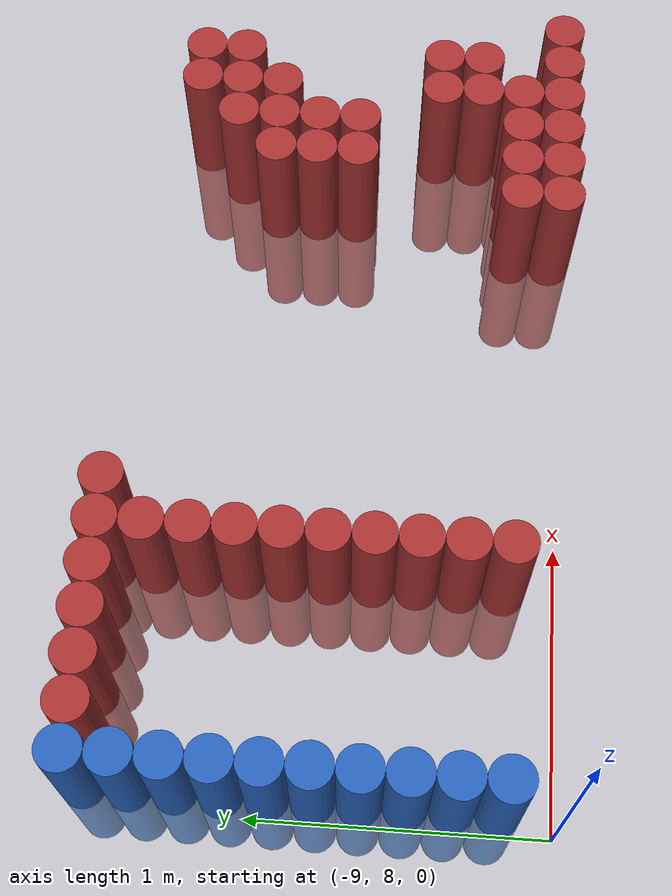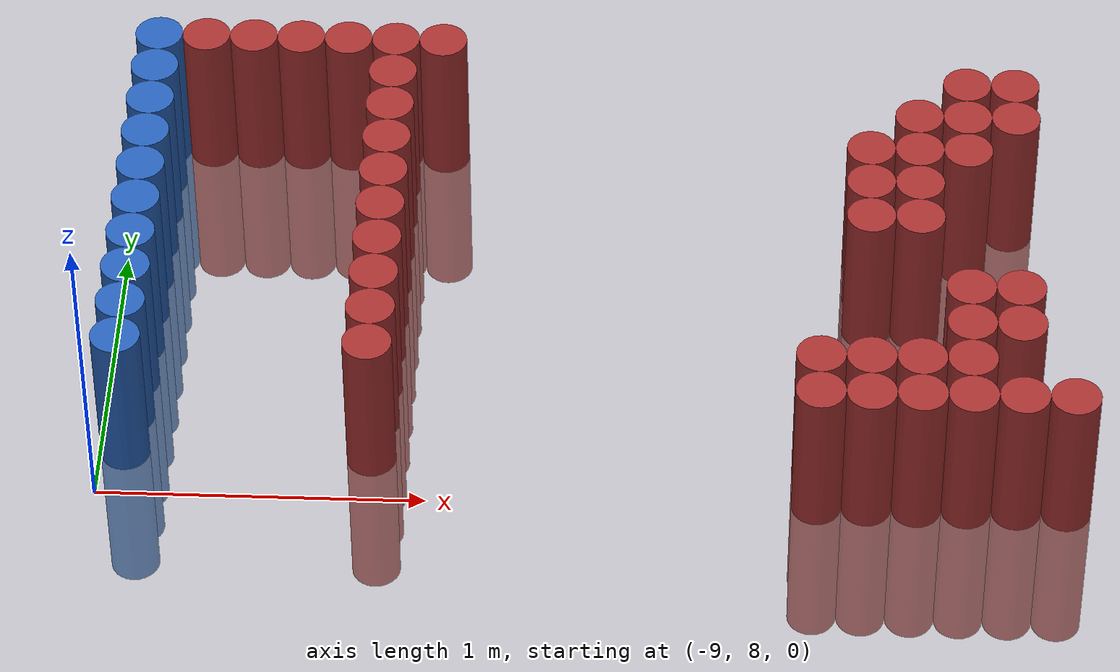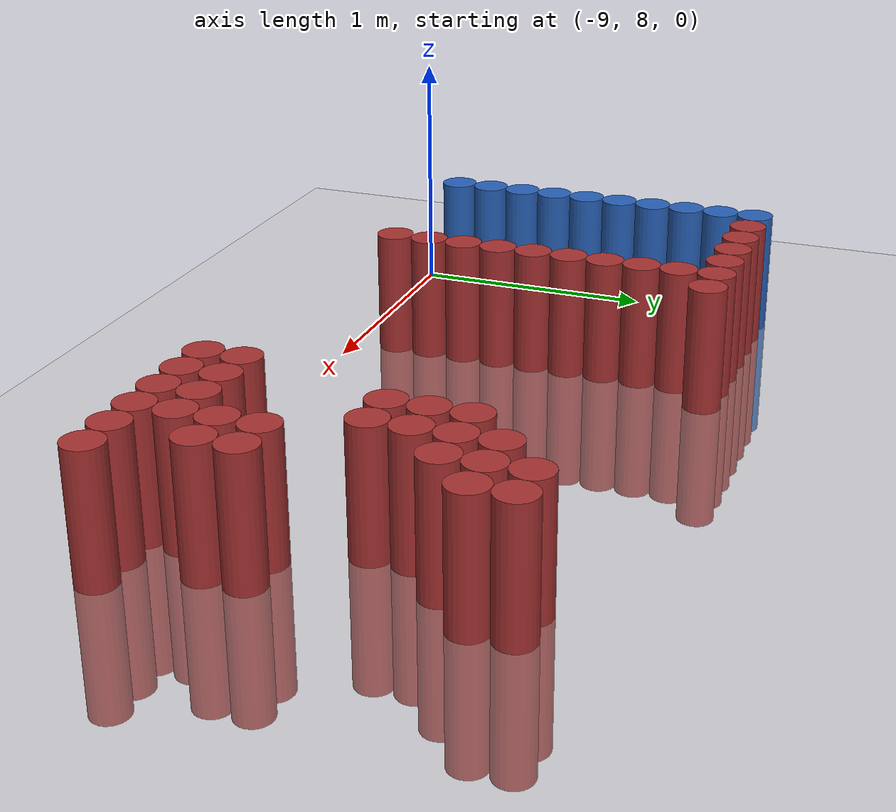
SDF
<sdf version="1.6">
 <world name="default">
  <model name="ground_plane">
   <static>1</static>
   <link name="link">
    <collision name="collision">
     <geometry><plane><normal>0 0 1</normal><size>100 100</size></plane></geometry>
     <surface><friction><ode><mu>100</mu><mu2>50</mu2></ode></friction></surface>
    </collision>
    <visual name="visual">
     <cast_shadows>0</cast_shadows>
     <geometry><plane><normal>0 0 1</normal><size>100 100</size></plane></geometry>
     <material>
      <script><uri>file://media/materials/scripts/gazebo.material</uri><name>Gazebo/Grey</name></script>
     </material>
    </visual>
   </link>
  </model>
  <model name="unit_cylinder_145">
   <static>1</static>
   <pose>-8.925000 8.175000 0.000000 0.000000 0.000000 0.000000</pose>
   <link name="link">
    <inertial>
     <mass>1</mass>
     <inertia><ixx>0.145833</ixx><ixy>0</ixy><ixz>0</ixz><iyy>0.145833</iyy><iyz>0</iyz><izz>0.125</izz></inertia>
    </inertial>
    <collision name="collision">
     <geometry><cylinder><radius>0.075000</radius><length>1</length></cylinder></geometry>
    </collision>
    <visual name="visual">
     <geometry><cylinder><radius>0.075000</radius><length>1</length></cylinder></geometry>
     <material>
      <ambient>0.152000 0.379000 0.720000 1</ambient>
      <diffuse>0.152000 0.379000 0.720000 1</diffuse>
     </material>
     <material>
      <script><name>Gazebo/Grey</name><uri>file://media/materials/scripts/gazebo.material</uri></script>
     </material>
    </visual>
   </link>
  </model>
  <model name="unit_cylinder_146">
   <static>1</static>
   <pose>-8.925000 8.325000 0.000000 0.000000 0.000000 0.000000</pose>
   <link name="link">
    <inertial>
     <mass>1</mass>
     <inertia><ixx>0.145833</ixx><ixy>0</ixy><ixz>0</ixz><iyy>0.145833</iyy><iyz>0</iyz><izz>0.125</izz></inertia>
    </inertial>
    <collision name="collision">
     <geometry><cylinder><radius>0.075000</radius><length>1</length></cylinder></geometry>
    </collision>
    <visual name="visual">
     <geometry><cylinder><radius>0.075000</radius><length>1</length></cylinder></geometry>
     <material>
      <ambient>0.152000 0.379000 0.720000 1</ambient>
      <diffuse>0.152000 0.379000 0.720000 1</diffuse>
     </material>
     <material>
      <script><name>Gazebo/Grey</name><uri>file://media/materials/scripts/gazebo.material</uri></script>
     </material>
    </visual>
   </link>
  </model>
  <model name="unit_cylinder_147">
   <static>1</static>
   <pose>-8.925000 8.475000 0.000000 0.000000 0.000000 0.000000</pose>
   <link name="link">
    <inertial>
     <mass>1</mass>
     <inertia><ixx>0.145833</ixx><ixy>0</ixy><ixz>0</ixz><iyy>0.145833</iyy><iyz>0</iyz><izz>0.125</izz></inertia>
    </inertial>
    <collision name="collision">
     <geometry><cylinder><radius>0.075000</radius><length>1</length></cylinder></geometry>
    </collision>
    <visual name="visual">
     <geometry><cylinder><radius>0.075000</radius><length>1</length></cylinder></geometry>
     <material>
      <ambient>0.152000 0.379000 0.720000 1</ambient>
      <diffuse>0.152000 0.379000 0.720000 1</diffuse>
     </material>
     <material>
      <script><name>Gazebo/Grey</name><uri>file://media/materials/scripts/gazebo.material</uri></script>
     </material>
    </visual>
   </link>
  </model>
  <model name="unit_cylinder_148">
   <static>1</static>
   <pose>-8.925000 8.625000 0.000000 0.000000 0.000000 0.000000</pose>
   <link name="link">
    <inertial>
     <mass>1</mass>
     <inertia><ixx>0.145833</ixx><ixy>0</ixy><ixz>0</ixz><iyy>0.145833</iyy><iyz>0</iyz><izz>0.125</izz></inertia>
    </inertial>
    <collision name="collision">
     <geometry><cylinder><radius>0.075000</radius><length>1</length></cylinder></geometry>
    </collision>
    <visual name="visual">
     <geometry><cylinder><radius>0.075000</radius><length>1</length></cylinder></geometry>
     <material>
      <ambient>0.152000 0.379000 0.720000 1</ambient>
      <diffuse>0.152000 0.379000 0.720000 1</diffuse>
     </material>
     <material>
      <script><name>Gazebo/Grey</name><uri>file://media/materials/scripts/gazebo.material</uri></script>
     </material>
    </visual>
   </link>
  </model>
  <model name="unit_cylinder_149">
   <static>1</static>
   <pose>-8.925000 8.775000 0.000000 0.000000 0.000000 0.000000</pose>
   <link name="link">
    <inertial>
     <mass>1</mass>
     <inertia><ixx>0.145833</ixx><ixy>0</ixy><ixz>0</ixz><iyy>0.145833</iyy><iyz>0</iyz><izz>0.125</izz></inertia>
    </inertial>
    <collision name="collision">
     <geometry><cylinder><radius>0.075000</radius><length>1</length></cylinder></geometry>
    </collision>
    <visual name="visual">
     <geometry><cylinder><radius>0.075000</radius><length>1</length></cylinder></geometry>
     <material>
      <ambient>0.152000 0.379000 0.720000 1</ambient>
      <diffuse>0.152000 0.379000 0.720000 1</diffuse>
     </material>
     <material>
      <script><name>Gazebo/Grey</name><uri>file://media/materials/scripts/gazebo.material</uri></script>
     </material>
    </visual>
   </link>
  </model>
  <model name="unit_cylinder_150">
   <static>1</static>
   <pose>-8.925000 8.925000 0.000000 0.000000 0.000000 0.000000</pose>
   <link name="link">
    <inertial>
     <mass>1</mass>
     <inertia><ixx>0.145833</ixx><ixy>0</ixy><ixz>0</ixz><iyy>0.145833</iyy><iyz>0</iyz><izz>0.125</izz></inertia>
    </inertial>
    <collision name="collision">
     <geometry><cylinder><radius>0.075000</radius><length>1</length></cylinder></geometry>
    </collision>
    <visual name="visual">
     <geometry><cylinder><radius>0.075000</radius><length>1</length></cylinder></geometry>
     <material>
      <ambient>0.152000 0.379000 0.720000 1</ambient>
      <diffuse>0.152000 0.379000 0.720000 1</diffuse>
     </material>
     <material>
      <script><name>Gazebo/Grey</name><uri>file://media/materials/scripts/gazebo.material</uri></script>
     </material>
    </visual>
   </link>
  </model>
  <model name="unit_cylinder_151">
   <static>1</static>
   <pose>-8.925000 9.075000 0.000000 0.000000 0.000000 0.000000</pose>
   <link name="link">
    <inertial>
     <mass>1</mass>
     <inertia><ixx>0.145833</ixx><ixy>0</ixy><ixz>0</ixz><iyy>0.145833</iyy><iyz>0</iyz><izz>0.125</izz></inertia>
    </inertial>
    <collision name="collision">
     <geometry><cylinder><radius>0.075000</radius><length>1</length></cylinder></geometry>
    </collision>
    <visual name="visual">
     <geometry><cylinder><radius>0.075000</radius><length>1</length></cylinder></geometry>
     <material>
      <ambient>0.152000 0.379000 0.720000 1</ambient>
      <diffuse>0.152000 0.379000 0.720000 1</diffuse>
     </material>
     <material>
      <script><name>Gazebo/Grey</name><uri>file://media/materials/scripts/gazebo.material</uri></script>
     </material>
    </visual>
   </link>
  </model>
  <model name="unit_cylinder_152">
   <static>1</static>
   <pose>-8.925000 9.225000 0.000000 0.000000 0.000000 0.000000</pose>
   <link name="link">
    <inertial>
     <mass>1</mass>
     <inertia><ixx>0.145833</ixx><ixy>0</ixy><ixz>0</ixz><iyy>0.145833</iyy><iyz>0</iyz><izz>0.125</izz></inertia>
    </inertial>
    <collision name="collision">
     <geometry><cylinder><radius>0.075000</radius><length>1</length></cylinder></geometry>
    </collision>
    <visual name="visual">
     <geometry><cylinder><radius>0.075000</radius><length>1</length></cylinder></geometry>
     <material>
      <ambient>0.152000 0.379000 0.720000 1</ambient>
      <diffuse>0.152000 0.379000 0.720000 1</diffuse>
     </material>
     <material>
      <script><name>Gazebo/Grey</name><uri>file://media/materials/scripts/gazebo.material</uri></script>
     </material>
    </visual>
   </link>
  </model>
  <model name="unit_cylinder_153">
   <static>1</static>
   <pose>-8.925000 9.375000 0.000000 0.000000 0.000000 0.000000</pose>
   <link name="link">
    <inertial>
     <mass>1</mass>
     <inertia><ixx>0.145833</ixx><ixy>0</ixy><ixz>0</ixz><iyy>0.145833</iyy><iyz>0</iyz><izz>0.125</izz></inertia>
    </inertial>
    <collision name="collision">
     <geometry><cylinder><radius>0.075000</radius><length>1</length></cylinder></geometry>
    </collision>
    <visual name="visual">
     <geometry><cylinder><radius>0.075000</radius><length>1</length></cylinder></geometry>
     <material>
      <ambient>0.152000 0.379000 0.720000 1</ambient>
      <diffuse>0.152000 0.379000 0.720000 1</diffuse>
     </material>
     <material>
      <script><name>Gazebo/Grey</name><uri>file://media/materials/scripts/gazebo.material</uri></script>
     </material>
    </visual>
   </link>
  </model>
  <model name="unit_cylinder_154">
   <static>1</static>
   <pose>-8.925000 9.525000 0.000000 0.000000 0.000000 0.000000</pose>
   <link name="link">
    <inertial>
     <mass>1</mass>
     <inertia><ixx>0.145833</ixx><ixy>0</ixy><ixz>0</ixz><iyy>0.145833</iyy><iyz>0</iyz><izz>0.125</izz></inertia>
    </inertial>
    <collision name="collision">
     <geometry><cylinder><radius>0.075000</radius><length>1</length></cylinder></geometry>
    </collision>
    <visual name="visual">
     <geometry><cylinder><radius>0.075000</radius><length>1</length></cylinder></geometry>
     <material>
      <ambient>0.152000 0.379000 0.720000 1</ambient>
      <diffuse>0.152000 0.379000 0.720000 1</diffuse>
     </material>
     <material>
      <script><name>Gazebo/Grey</name><uri>file://media/materials/scripts/gazebo.material</uri></script>
     </material>
    </visual>
   </link>
  </model>
  <model name="unit_cylinder_156">
   <static>1</static>
   <pose>-8.775000 9.525000 0.000000 0.000000 0.000000 0.000000</pose>
   <link name="link">
    <inertial>
     <mass>1</mass>
     <inertia><ixx>0.145833</ixx><ixy>0</ixy><ixz>0</ixz><iyy>0.145833</iyy><iyz>0</iyz><izz>0.125</izz></inertia>
    </inertial>
    <collision name="collision">
     <geometry><cylinder><radius>0.075000</radius><length>1</length></cylinder></geometry>
    </collision>
    <visual name="visual">
     <geometry><cylinder><radius>0.075000</radius><length>1</length></cylinder></geometry>
     <material>
      <ambient>0.648000 0.192000 0.192000 1</ambient>
      <diffuse>0.648000 0.192000 0.192000 1</diffuse>
     </material>
     <material>
      <script><name>Gazebo/Grey</name><uri>file://media/materials/scripts/gazebo.material</uri></script>
     </material>
    </visual>
   </link>
  </model>
  <model name="unit_cylinder_158">
   <static>1</static>
   <pose>-8.625000 9.525000 0.000000 0.000000 0.000000 0.000000</pose>
   <link name="link">
    <inertial>
     <mass>1</mass>
     <inertia><ixx>0.145833</ixx><ixy>0</ixy><ixz>0</ixz><iyy>0.145833</iyy><iyz>0</iyz><izz>0.125</izz></inertia>
    </inertial>
    <collision name="collision">
     <geometry><cylinder><radius>0.075000</radius><length>1</length></cylinder></geometry>
    </collision>
    <visual name="visual">
     <geometry><cylinder><radius>0.075000</radius><length>1</length></cylinder></geometry>
     <material>
      <ambient>0.648000 0.192000 0.192000 1</ambient>
      <diffuse>0.648000 0.192000 0.192000 1</diffuse>
     </material>
     <material>
      <script><name>Gazebo/Grey</name><uri>file://media/materials/scripts/gazebo.material</uri></script>
     </material>
    </visual>
   </link>
  </model>
  <model name="unit_cylinder_160">
   <static>1</static>
   <pose>-8.475000 9.525000 0.000000 0.000000 0.000000 0.000000</pose>
   <link name="link">
    <inertial>
     <mass>1</mass>
     <inertia><ixx>0.145833</ixx><ixy>0</ixy><ixz>0</ixz><iyy>0.145833</iyy><iyz>0</iyz><izz>0.125</izz></inertia>
    </inertial>
    <collision name="collision">
     <geometry><cylinder><radius>0.075000</radius><length>1</length></cylinder></geometry>
    </collision>
    <visual name="visual">
     <geometry><cylinder><radius>0.075000</radius><length>1</length></cylinder></geometry>
     <material>
      <ambient>0.648000 0.192000 0.192000 1</ambient>
      <diffuse>0.648000 0.192000 0.192000 1</diffuse>
     </material>
     <material>
      <script><name>Gazebo/Grey</name><uri>file://media/materials/scripts/gazebo.material</uri></script>
     </material>
    </visual>
   </link>
  </model>
  <model name="unit_cylinder_162">
   <static>1</static>
   <pose>-8.325000 9.525000 0.000000 0.000000 0.000000 0.000000</pose>
   <link name="link">
    <inertial>
     <mass>1</mass>
     <inertia><ixx>0.145833</ixx><ixy>0</ixy><ixz>0</ixz><iyy>0.145833</iyy><iyz>0</iyz><izz>0.125</izz></inertia>
    </inertial>
    <collision name="collision">
     <geometry><cylinder><radius>0.075000</radius><length>1</length></cylinder></geometry>
    </collision>
    <visual name="visual">
     <geometry><cylinder><radius>0.075000</radius><length>1</length></cylinder></geometry>
     <material>
      <ambient>0.648000 0.192000 0.192000 1</ambient>
      <diffuse>0.648000 0.192000 0.192000 1</diffuse>
     </material>
     <material>
      <script><name>Gazebo/Grey</name><uri>file://media/materials/scripts/gazebo.material</uri></script>
     </material>
    </visual>
   </link>
  </model>
  <model name="unit_cylinder_183">
   <static>1</static>
   <pose>-8.175000 8.175000 0.000000 0.000000 0.000000 0.000000</pose>
   <link name="link">
    <inertial>
     <mass>1</mass>
     <inertia><ixx>0.145833</ixx><ixy>0</ixy><ixz>0</ixz><iyy>0.145833</iyy><iyz>0</iyz><izz>0.125</izz></inertia>
    </inertial>
    <collision name="collision">
     <geometry><cylinder><radius>0.075000</radius><length>1</length></cylinder></geometry>
    </collision>
    <visual name="visual">
     <geometry><cylinder><radius>0.075000</radius><length>1</length></cylinder></geometry>
     <material>
      <ambient>0.648000 0.192000 0.192000 1</ambient>
      <diffuse>0.648000 0.192000 0.192000 1</diffuse>
     </material>
     <material>
      <script><name>Gazebo/Grey</name><uri>file://media/materials/scripts/gazebo.material</uri></script>
     </material>
    </visual>
   </link>
  </model>
  <model name="unit_cylinder_184">
   <static>1</static>
   <pose>-8.175000 8.325000 0.000000 0.000000 0.000000 0.000000</pose>
   <link name="link">
    <inertial>
     <mass>1</mass>
     <inertia><ixx>0.145833</ixx><ixy>0</ixy><ixz>0</ixz><iyy>0.145833</iyy><iyz>0</iyz><izz>0.125</izz></inertia>
    </inertial>
    <collision name="collision">
     <geometry><cylinder><radius>0.075000</radius><length>1</length></cylinder></geometry>
    </collision>
    <visual name="visual">
     <geometry><cylinder><radius>0.075000</radius><length>1</length></cylinder></geometry>
     <material>
      <ambient>0.648000 0.192000 0.192000 1</ambient>
      <diffuse>0.648000 0.192000 0.192000 1</diffuse>
     </material>
     <material>
      <script><name>Gazebo/Grey</name><uri>file://media/materials/scripts/gazebo.material</uri></script>
     </material>
    </visual>
   </link>
  </model>
  <model name="unit_cylinder_185">
   <static>1</static>
   <pose>-8.175000 8.475000 0.000000 0.000000 0.000000 0.000000</pose>
   <link name="link">
    <inertial>
     <mass>1</mass>
     <inertia><ixx>0.145833</ixx><ixy>0</ixy><ixz>0</ixz><iyy>0.145833</iyy><iyz>0</iyz><izz>0.125</izz></inertia>
    </inertial>
    <collision name="collision">
     <geometry><cylinder><radius>0.075000</radius><length>1</length></cylinder></geometry>
    </collision>
    <visual name="visual">
     <geometry><cylinder><radius>0.075000</radius><length>1</length></cylinder></geometry>
     <material>
      <ambient>0.648000 0.192000 0.192000 1</ambient>
      <diffuse>0.648000 0.192000 0.192000 1</diffuse>
     </material>
     <material>
      <script><name>Gazebo/Grey</name><uri>file://media/materials/scripts/gazebo.material</uri></script>
     </material>
    </visual>
   </link>
  </model>
  <model name="unit_cylinder_186">
   <static>1</static>
   <pose>-8.175000 8.625000 0.000000 0.000000 0.000000 0.000000</pose>
   <link name="link">
    <inertial>
     <mass>1</mass>
     <inertia><ixx>0.145833</ixx><ixy>0</ixy><ixz>0</ixz><iyy>0.145833</iyy><iyz>0</iyz><izz>0.125</izz></inertia>
    </inertial>
    <collision name="collision">
     <geometry><cylinder><radius>0.075000</radius><length>1</length></cylinder></geometry>
    </collision>
    <visual name="visual">
     <geometry><cylinder><radius>0.075000</radius><length>1</length></cylinder></geometry>
     <material>
      <ambient>0.648000 0.192000 0.192000 1</ambient>
      <diffuse>0.648000 0.192000 0.192000 1</diffuse>
     </material>
     <material>
      <script><name>Gazebo/Grey</name><uri>file://media/materials/scripts/gazebo.material</uri></script>
     </material>
    </visual>
   </link>
  </model>
  <model name="unit_cylinder_187">
   <static>1</static>
   <pose>-8.175000 8.775000 0.000000 0.000000 0.000000 0.000000</pose>
   <link name="link">
    <inertial>
     <mass>1</mass>
     <inertia><ixx>0.145833</ixx><ixy>0</ixy><ixz>0</ixz><iyy>0.145833</iyy><iyz>0</iyz><izz>0.125</izz></inertia>
    </inertial>
    <collision name="collision">
     <geometry><cylinder><radius>0.075000</radius><length>1</length></cylinder></geometry>
    </collision>
    <visual name="visual">
     <geometry><cylinder><radius>0.075000</radius><length>1</length></cylinder></geometry>
     <material>
      <ambient>0.648000 0.192000 0.192000 1</ambient>
      <diffuse>0.648000 0.192000 0.192000 1</diffuse>
     </material>
     <material>
      <script><name>Gazebo/Grey</name><uri>file://media/materials/scripts/gazebo.material</uri></script>
     </material>
    </visual>
   </link>
  </model>
  <model name="unit_cylinder_188">
   <static>1</static>
   <pose>-8.175000 8.925000 0.000000 0.000000 0.000000 0.000000</pose>
   <link name="link">
    <inertial>
     <mass>1</mass>
     <inertia><ixx>0.145833</ixx><ixy>0</ixy><ixz>0</ixz><iyy>0.145833</iyy><iyz>0</iyz><izz>0.125</izz></inertia>
    </inertial>
    <collision name="collision">
     <geometry><cylinder><radius>0.075000</radius><length>1</length></cylinder></geometry>
    </collision>
    <visual name="visual">
     <geometry><cylinder><radius>0.075000</radius><length>1</length></cylinder></geometry>
     <material>
      <ambient>0.648000 0.192000 0.192000 1</ambient>
      <diffuse>0.648000 0.192000 0.192000 1</diffuse>
     </material>
     <material>
      <script><name>Gazebo/Grey</name><uri>file://media/materials/scripts/gazebo.material</uri></script>
     </material>
    </visual>
   </link>
  </model>
  <model name="unit_cylinder_189">
   <static>1</static>
   <pose>-8.175000 9.075000 0.000000 0.000000 0.000000 0.000000</pose>
   <link name="link">
    <inertial>
     <mass>1</mass>
     <inertia><ixx>0.145833</ixx><ixy>0</ixy><ixz>0</ixz><iyy>0.145833</iyy><iyz>0</iyz><izz>0.125</izz></inertia>
    </inertial>
    <collision name="collision">
     <geometry><cylinder><radius>0.075000</radius><length>1</length></cylinder></geometry>
    </collision>
    <visual name="visual">
     <geometry><cylinder><radius>0.075000</radius><length>1</length></cylinder></geometry>
     <material>
      <ambient>0.648000 0.192000 0.192000 1</ambient>
      <diffuse>0.648000 0.192000 0.192000 1</diffuse>
     </material>
     <material>
      <script><name>Gazebo/Grey</name><uri>file://media/materials/scripts/gazebo.material</uri></script>
     </material>
    </visual>
   </link>
  </model>
  <model name="unit_cylinder_190">
   <static>1</static>
   <pose>-8.175000 9.225000 0.000000 0.000000 0.000000 0.000000</pose>
   <link name="link">
    <inertial>
     <mass>1</mass>
     <inertia><ixx>0.145833</ixx><ixy>0</ixy><ixz>0</ixz><iyy>0.145833</iyy><iyz>0</iyz><izz>0.125</izz></inertia>
    </inertial>
    <collision name="collision">
     <geometry><cylinder><radius>0.075000</radius><length>1</length></cylinder></geometry>
    </collision>
    <visual name="visual">
     <geometry><cylinder><radius>0.075000</radius><length>1</length></cylinder></geometry>
     <material>
      <ambient>0.648000 0.192000 0.192000 1</ambient>
      <diffuse>0.648000 0.192000 0.192000 1</diffuse>
     </material>
     <material>
      <script><name>Gazebo/Grey</name><uri>file://media/materials/scripts/gazebo.material</uri></script>
     </material>
    </visual>
   </link>
  </model>
  <model name="unit_cylinder_191">
   <static>1</static>
   <pose>-8.175000 9.375000 0.000000 0.000000 0.000000 0.000000</pose>
   <link name="link">
    <inertial>
     <mass>1</mass>
     <inertia><ixx>0.145833</ixx><ixy>0</ixy><ixz>0</ixz><iyy>0.145833</iyy><iyz>0</iyz><izz>0.125</izz></inertia>
    </inertial>
    <collision name="collision">
     <geometry><cylinder><radius>0.075000</radius><length>1</length></cylinder></geometry>
    </collision>
    <visual name="visual">
     <geometry><cylinder><radius>0.075000</radius><length>1</length></cylinder></geometry>
     <material>
      <ambient>0.648000 0.192000 0.192000 1</ambient>
      <diffuse>0.648000 0.192000 0.192000 1</diffuse>
     </material>
     <material>
      <script><name>Gazebo/Grey</name><uri>file://media/materials/scripts/gazebo.material</uri></script>
     </material>
    </visual>
   </link>
  </model>
  <model name="unit_cylinder_192">
   <static>1</static>
   <pose>-8.175000 9.525000 0.000000 0.000000 0.000000 0.000000</pose>
   <link name="link">
    <inertial>
     <mass>1</mass>
     <inertia><ixx>0.145833</ixx><ixy>0</ixy><ixz>0</ixz><iyy>0.145833</iyy><iyz>0</iyz><izz>0.125</izz></inertia>
    </inertial>
    <collision name="collision">
     <geometry><cylinder><radius>0.075000</radius><length>1</length></cylinder></geometry>
    </collision>
    <visual name="visual">
     <geometry><cylinder><radius>0.075000</radius><length>1</length></cylinder></geometry>
     <material>
      <ambient>0.648000 0.192000 0.192000 1</ambient>
      <diffuse>0.648000 0.192000 0.192000 1</diffuse>
     </material>
     <material>
      <script><name>Gazebo/Grey</name><uri>file://media/materials/scripts/gazebo.material</uri></script>
     </material>
    </visual>
   </link>
  </model>
  <model name="unit_cylinder_193">
   <static>1</static>
   <pose>-8.025000 9.525000 0.000000 0.000000 0.000000 0.000000</pose>
   <link name="link">
    <inertial>
     <mass>1</mass>
     <inertia><ixx>0.145833</ixx><ixy>0</ixy><ixz>0</ixz><iyy>0.145833</iyy><iyz>0</iyz><izz>0.125</izz></inertia>
    </inertial>
    <collision name="collision">
     <geometry><cylinder><radius>0.075000</radius><length>1</length></cylinder></geometry>
    </collision>
    <visual name="visual">
     <geometry><cylinder><radius>0.075000</radius><length>1</length></cylinder></geometry>
     <material>
      <ambient>0.648000 0.192000 0.192000 1</ambient>
      <diffuse>0.648000 0.192000 0.192000 1</diffuse>
     </material>
     <material>
      <script><name>Gazebo/Grey</name><uri>file://media/materials/scripts/gazebo.material</uri></script>
     </material>
    </visual>
   </link>
  </model>
  <model name="unit_cylinder_198">
   <static>1</static>
   <pose>-6.825000 8.025000 0.000000 0.000000 0.000000 0.000000</pose>
   <link name="link">
    <inertial>
     <mass>1</mass>
     <inertia><ixx>0.145833</ixx><ixy>0</ixy><ixz>0</ixz><iyy>0.145833</iyy><iyz>0</iyz><izz>0.125</izz></inertia>
    </inertial>
    <collision name="collision">
     <geometry><cylinder><radius>0.075000</radius><length>1</length></cylinder></geometry>
    </collision>
    <visual name="visual">
     <geometry><cylinder><radius>0.075000</radius><length>1</length></cylinder></geometry>
     <material>
      <ambient>0.648000 0.192000 0.192000 1</ambient>
      <diffuse>0.648000 0.192000 0.192000 1</diffuse>
     </material>
     <material>
      <script><name>Gazebo/Grey</name><uri>file://media/materials/scripts/gazebo.material</uri></script>
     </material>
    </visual>
   </link>
  </model>
  <model name="unit_cylinder_199">
   <static>1</static>
   <pose>-6.825000 8.175000 0.000000 0.000000 0.000000 0.000000</pose>
   <link name="link">
    <inertial>
     <mass>1</mass>
     <inertia><ixx>0.145833</ixx><ixy>0</ixy><ixz>0</ixz><iyy>0.145833</iyy><iyz>0</iyz><izz>0.125</izz></inertia>
    </inertial>
    <collision name="collision">
     <geometry><cylinder><radius>0.075000</radius><length>1</length></cylinder></geometry>
    </collision>
    <visual name="visual">
     <geometry><cylinder><radius>0.075000</radius><length>1</length></cylinder></geometry>
     <material>
      <ambient>0.648000 0.192000 0.192000 1</ambient>
      <diffuse>0.648000 0.192000 0.192000 1</diffuse>
     </material>
     <material>
      <script><name>Gazebo/Grey</name><uri>file://media/materials/scripts/gazebo.material</uri></script>
     </material>
    </visual>
   </link>
  </model>
  <model name="unit_cylinder_208">
   <static>1</static>
   <pose>-6.675000 8.025000 0.000000 0.000000 0.000000 0.000000</pose>
   <link name="link">
    <inertial>
     <mass>1</mass>
     <inertia><ixx>0.145833</ixx><ixy>0</ixy><ixz>0</ixz><iyy>0.145833</iyy><iyz>0</iyz><izz>0.125</izz></inertia>
    </inertial>
    <collision name="collision">
     <geometry><cylinder><radius>0.075000</radius><length>1</length></cylinder></geometry>
    </collision>
    <visual name="visual">
     <geometry><cylinder><radius>0.075000</radius><length>1</length></cylinder></geometry>
     <material>
      <ambient>0.648000 0.192000 0.192000 1</ambient>
      <diffuse>0.648000 0.192000 0.192000 1</diffuse>
     </material>
     <material>
      <script><name>Gazebo/Grey</name><uri>file://media/materials/scripts/gazebo.material</uri></script>
     </material>
    </visual>
   </link>
  </model>
  <model name="unit_cylinder_209">
   <static>1</static>
   <pose>-6.675000 8.175000 0.000000 0.000000 0.000000 0.000000</pose>
   <link name="link">
    <inertial>
     <mass>1</mass>
     <inertia><ixx>0.145833</ixx><ixy>0</ixy><ixz>0</ixz><iyy>0.145833</iyy><iyz>0</iyz><izz>0.125</izz></inertia>
    </inertial>
    <collision name="collision">
     <geometry><cylinder><radius>0.075000</radius><length>1</length></cylinder></geometry>
    </collision>
    <visual name="visual">
     <geometry><cylinder><radius>0.075000</radius><length>1</length></cylinder></geometry>
     <material>
      <ambient>0.648000 0.192000 0.192000 1</ambient>
      <diffuse>0.648000 0.192000 0.192000 1</diffuse>
     </material>
     <material>
      <script><name>Gazebo/Grey</name><uri>file://media/materials/scripts/gazebo.material</uri></script>
     </material>
    </visual>
   </link>
  </model>
  <model name="unit_cylinder_210">
   <static>1</static>
   <pose>-6.675000 8.775000 0.000000 0.000000 0.000000 0.000000</pose>
   <link name="link">
    <inertial>
     <mass>1</mass>
     <inertia><ixx>0.145833</ixx><ixy>0</ixy><ixz>0</ixz><iyy>0.145833</iyy><iyz>0</iyz><izz>0.125</izz></inertia>
    </inertial>
    <collision name="collision">
     <geometry><cylinder><radius>0.075000</radius><length>1</length></cylinder></geometry>
    </collision>
    <visual name="visual">
     <geometry><cylinder><radius>0.075000</radius><length>1</length></cylinder></geometry>
     <material>
      <ambient>0.648000 0.192000 0.192000 1</ambient>
      <diffuse>0.648000 0.192000 0.192000 1</diffuse>
     </material>
     <material>
      <script><name>Gazebo/Grey</name><uri>file://media/materials/scripts/gazebo.material</uri></script>
     </material>
    </visual>
   </link>
  </model>
  <model name="unit_cylinder_211">
   <static>1</static>
   <pose>-6.675000 8.925000 0.000000 0.000000 0.000000 0.000000</pose>
   <link name="link">
    <inertial>
     <mass>1</mass>
     <inertia><ixx>0.145833</ixx><ixy>0</ixy><ixz>0</ixz><iyy>0.145833</iyy><iyz>0</iyz><izz>0.125</izz></inertia>
    </inertial>
    <collision name="collision">
     <geometry><cylinder><radius>0.075000</radius><length>1</length></cylinder></geometry>
    </collision>
    <visual name="visual">
     <geometry><cylinder><radius>0.075000</radius><length>1</length></cylinder></geometry>
     <material>
      <ambient>0.648000 0.192000 0.192000 1</ambient>
      <diffuse>0.648000 0.192000 0.192000 1</diffuse>
     </material>
     <material>
      <script><name>Gazebo/Grey</name><uri>file://media/materials/scripts/gazebo.material</uri></script>
     </material>
    </visual>
   </link>
  </model>
  <model name="unit_cylinder_212">
   <static>1</static>
   <pose>-6.675000 9.075000 0.000000 0.000000 0.000000 0.000000</pose>
   <link name="link">
    <inertial>
     <mass>1</mass>
     <inertia><ixx>0.145833</ixx><ixy>0</ixy><ixz>0</ixz><iyy>0.145833</iyy><iyz>0</iyz><izz>0.125</izz></inertia>
    </inertial>
    <collision name="collision">
     <geometry><cylinder><radius>0.075000</radius><length>1</length></cylinder></geometry>
    </collision>
    <visual name="visual">
     <geometry><cylinder><radius>0.075000</radius><length>1</length></cylinder></geometry>
     <material>
      <ambient>0.648000 0.192000 0.192000 1</ambient>
      <diffuse>0.648000 0.192000 0.192000 1</diffuse>
     </material>
     <material>
      <script><name>Gazebo/Grey</name><uri>file://media/materials/scripts/gazebo.material</uri></script>
     </material>
    </visual>
   </link>
  </model>
  <model name="unit_cylinder_222">
   <static>1</static>
   <pose>-6.525000 8.025000 0.000000 0.000000 0.000000 0.000000</pose>
   <link name="link">
    <inertial>
     <mass>1</mass>
     <inertia><ixx>0.145833</ixx><ixy>0</ixy><ixz>0</ixz><iyy>0.145833</iyy><iyz>0</iyz><izz>0.125</izz></inertia>
    </inertial>
    <collision name="collision">
     <geometry><cylinder><radius>0.075000</radius><length>1</length></cylinder></geometry>
    </collision>
    <visual name="visual">
     <geometry><cylinder><radius>0.075000</radius><length>1</length></cylinder></geometry>
     <material>
      <ambient>0.648000 0.192000 0.192000 1</ambient>
      <diffuse>0.648000 0.192000 0.192000 1</diffuse>
     </material>
     <material>
      <script><name>Gazebo/Grey</name><uri>file://media/materials/scripts/gazebo.material</uri></script>
     </material>
    </visual>
   </link>
  </model>
  <model name="unit_cylinder_223">
   <static>1</static>
   <pose>-6.525000 8.175000 0.000000 0.000000 0.000000 0.000000</pose>
   <link name="link">
    <inertial>
     <mass>1</mass>
     <inertia><ixx>0.145833</ixx><ixy>0</ixy><ixz>0</ixz><iyy>0.145833</iyy><iyz>0</iyz><izz>0.125</izz></inertia>
    </inertial>
    <collision name="collision">
     <geometry><cylinder><radius>0.075000</radius><length>1</length></cylinder></geometry>
    </collision>
    <visual name="visual">
     <geometry><cylinder><radius>0.075000</radius><length>1</length></cylinder></geometry>
     <material>
      <ambient>0.648000 0.192000 0.192000 1</ambient>
      <diffuse>0.648000 0.192000 0.192000 1</diffuse>
     </material>
     <material>
      <script><name>Gazebo/Grey</name><uri>file://media/materials/scripts/gazebo.material</uri></script>
     </material>
    </visual>
   </link>
  </model>
  <model name="unit_cylinder_224">
   <static>1</static>
   <pose>-6.525000 8.775000 0.000000 0.000000 0.000000 0.000000</pose>
   <link name="link">
    <inertial>
     <mass>1</mass>
     <inertia><ixx>0.145833</ixx><ixy>0</ixy><ixz>0</ixz><iyy>0.145833</iyy><iyz>0</iyz><izz>0.125</izz></inertia>
    </inertial>
    <collision name="collision">
     <geometry><cylinder><radius>0.075000</radius><length>1</length></cylinder></geometry>
    </collision>
    <visual name="visual">
     <geometry><cylinder><radius>0.075000</radius><length>1</length></cylinder></geometry>
     <material>
      <ambient>0.648000 0.192000 0.192000 1</ambient>
      <diffuse>0.648000 0.192000 0.192000 1</diffuse>
     </material>
     <material>
      <script><name>Gazebo/Grey</name><uri>file://media/materials/scripts/gazebo.material</uri></script>
     </material>
    </visual>
   </link>
  </model>
  <model name="unit_cylinder_225">
   <static>1</static>
   <pose>-6.525000 8.925000 0.000000 0.000000 0.000000 0.000000</pose>
   <link name="link">
    <inertial>
     <mass>1</mass>
     <inertia><ixx>0.145833</ixx><ixy>0</ixy><ixz>0</ixz><iyy>0.145833</iyy><iyz>0</iyz><izz>0.125</izz></inertia>
    </inertial>
    <collision name="collision">
     <geometry><cylinder><radius>0.075000</radius><length>1</length></cylinder></geometry>
    </collision>
    <visual name="visual">
     <geometry><cylinder><radius>0.075000</radius><length>1</length></cylinder></geometry>
     <material>
      <ambient>0.648000 0.192000 0.192000 1</ambient>
      <diffuse>0.648000 0.192000 0.192000 1</diffuse>
     </material>
     <material>
      <script><name>Gazebo/Grey</name><uri>file://media/materials/scripts/gazebo.material</uri></script>
     </material>
    </visual>
   </link>
  </model>
  <model name="unit_cylinder_226">
   <static>1</static>
   <pose>-6.525000 9.075000 0.000000 0.000000 0.000000 0.000000</pose>
   <link name="link">
    <inertial>
     <mass>1</mass>
     <inertia><ixx>0.145833</ixx><ixy>0</ixy><ixz>0</ixz><iyy>0.145833</iyy><iyz>0</iyz><izz>0.125</izz></inertia>
    </inertial>
    <collision name="collision">
     <geometry><cylinder><radius>0.075000</radius><length>1</length></cylinder></geometry>
    </collision>
    <visual name="visual">
     <geometry><cylinder><radius>0.075000</radius><length>1</length></cylinder></geometry>
     <material>
      <ambient>0.648000 0.192000 0.192000 1</ambient>
      <diffuse>0.648000 0.192000 0.192000 1</diffuse>
     </material>
     <material>
      <script><name>Gazebo/Grey</name><uri>file://media/materials/scripts/gazebo.material</uri></script>
     </material>
    </visual>
   </link>
  </model>
  <model name="unit_cylinder_227">
   <static>1</static>
   <pose>-6.525000 9.225000 0.000000 0.000000 0.000000 0.000000</pose>
   <link name="link">
    <inertial>
     <mass>1</mass>
     <inertia><ixx>0.145833</ixx><ixy>0</ixy><ixz>0</ixz><iyy>0.145833</iyy><iyz>0</iyz><izz>0.125</izz></inertia>
    </inertial>
    <collision name="collision">
     <geometry><cylinder><radius>0.075000</radius><length>1</length></cylinder></geometry>
    </collision>
    <visual name="visual">
     <geometry><cylinder><radius>0.075000</radius><length>1</length></cylinder></geometry>
     <material>
      <ambient>0.648000 0.192000 0.192000 1</ambient>
      <diffuse>0.648000 0.192000 0.192000 1</diffuse>
     </material>
     <material>
      <script><name>Gazebo/Grey</name><uri>file://media/materials/scripts/gazebo.material</uri></script>
     </material>
    </visual>
   </link>
  </model>
  <model name="unit_cylinder_234">
   <static>1</static>
   <pose>-6.375000 8.025000 0.000000 0.000000 0.000000 0.000000</pose>
   <link name="link">
    <inertial>
     <mass>1</mass>
     <inertia><ixx>0.145833</ixx><ixy>0</ixy><ixz>0</ixz><iyy>0.145833</iyy><iyz>0</iyz><izz>0.125</izz></inertia>
    </inertial>
    <collision name="collision">
     <geometry><cylinder><radius>0.075000</radius><length>1</length></cylinder></geometry>
    </collision>
    <visual name="visual">
     <geometry><cylinder><radius>0.075000</radius><length>1</length></cylinder></geometry>
     <material>
      <ambient>0.648000 0.192000 0.192000 1</ambient>
      <diffuse>0.648000 0.192000 0.192000 1</diffuse>
     </material>
     <material>
      <script><name>Gazebo/Grey</name><uri>file://media/materials/scripts/gazebo.material</uri></script>
     </material>
    </visual>
   </link>
  </model>
  <model name="unit_cylinder_235">
   <static>1</static>
   <pose>-6.375000 8.175000 0.000000 0.000000 0.000000 0.000000</pose>
   <link name="link">
    <inertial>
     <mass>1</mass>
     <inertia><ixx>0.145833</ixx><ixy>0</ixy><ixz>0</ixz><iyy>0.145833</iyy><iyz>0</iyz><izz>0.125</izz></inertia>
    </inertial>
    <collision name="collision">
     <geometry><cylinder><radius>0.075000</radius><length>1</length></cylinder></geometry>
    </collision>
    <visual name="visual">
     <geometry><cylinder><radius>0.075000</radius><length>1</length></cylinder></geometry>
     <material>
      <ambient>0.648000 0.192000 0.192000 1</ambient>
      <diffuse>0.648000 0.192000 0.192000 1</diffuse>
     </material>
     <material>
      <script><name>Gazebo/Grey</name><uri>file://media/materials/scripts/gazebo.material</uri></script>
     </material>
    </visual>
   </link>
  </model>
  <model name="unit_cylinder_236">
   <static>1</static>
   <pose>-6.375000 8.325000 0.000000 0.000000 0.000000 0.000000</pose>
   <link name="link">
    <inertial>
     <mass>1</mass>
     <inertia><ixx>0.145833</ixx><ixy>0</ixy><ixz>0</ixz><iyy>0.145833</iyy><iyz>0</iyz><izz>0.125</izz></inertia>
    </inertial>
    <collision name="collision">
     <geometry><cylinder><radius>0.075000</radius><length>1</length></cylinder></geometry>
    </collision>
    <visual name="visual">
     <geometry><cylinder><radius>0.075000</radius><length>1</length></cylinder></geometry>
     <material>
      <ambient>0.648000 0.192000 0.192000 1</ambient>
      <diffuse>0.648000 0.192000 0.192000 1</diffuse>
     </material>
     <material>
      <script><name>Gazebo/Grey</name><uri>file://media/materials/scripts/gazebo.material</uri></script>
     </material>
    </visual>
   </link>
  </model>
  <model name="unit_cylinder_237">
   <static>1</static>
   <pose>-6.375000 8.475000 0.000000 0.000000 0.000000 0.000000</pose>
   <link name="link">
    <inertial>
     <mass>1</mass>
     <inertia><ixx>0.145833</ixx><ixy>0</ixy><ixz>0</ixz><iyy>0.145833</iyy><iyz>0</iyz><izz>0.125</izz></inertia>
    </inertial>
    <collision name="collision">
     <geometry><cylinder><radius>0.075000</radius><length>1</length></cylinder></geometry>
    </collision>
    <visual name="visual">
     <geometry><cylinder><radius>0.075000</radius><length>1</length></cylinder></geometry>
     <material>
      <ambient>0.648000 0.192000 0.192000 1</ambient>
      <diffuse>0.648000 0.192000 0.192000 1</diffuse>
     </material>
     <material>
      <script><name>Gazebo/Grey</name><uri>file://media/materials/scripts/gazebo.material</uri></script>
     </material>
    </visual>
   </link>
  </model>
  <model name="unit_cylinder_238">
   <static>1</static>
   <pose>-6.375000 9.075000 0.000000 0.000000 0.000000 0.000000</pose>
   <link name="link">
    <inertial>
     <mass>1</mass>
     <inertia><ixx>0.145833</ixx><ixy>0</ixy><ixz>0</ixz><iyy>0.145833</iyy><iyz>0</iyz><izz>0.125</izz></inertia>
    </inertial>
    <collision name="collision">
     <geometry><cylinder><radius>0.075000</radius><length>1</length></cylinder></geometry>
    </collision>
    <visual name="visual">
     <geometry><cylinder><radius>0.075000</radius><length>1</length></cylinder></geometry>
     <material>
      <ambient>0.648000 0.192000 0.192000 1</ambient>
      <diffuse>0.648000 0.192000 0.192000 1</diffuse>
     </material>
     <material>
      <script><name>Gazebo/Grey</name><uri>file://media/materials/scripts/gazebo.material</uri></script>
     </material>
    </visual>
   </link>
  </model>
  <model name="unit_cylinder_239">
   <static>1</static>
   <pose>-6.375000 9.225000 0.000000 0.000000 0.000000 0.000000</pose>
   <link name="link">
    <inertial>
     <mass>1</mass>
     <inertia><ixx>0.145833</ixx><ixy>0</ixy><ixz>0</ixz><iyy>0.145833</iyy><iyz>0</iyz><izz>0.125</izz></inertia>
    </inertial>
    <collision name="collision">
     <geometry><cylinder><radius>0.075000</radius><length>1</length></cylinder></geometry>
    </collision>
    <visual name="visual">
     <geometry><cylinder><radius>0.075000</radius><length>1</length></cylinder></geometry>
     <material>
      <ambient>0.648000 0.192000 0.192000 1</ambient>
      <diffuse>0.648000 0.192000 0.192000 1</diffuse>
     </material>
     <material>
      <script><name>Gazebo/Grey</name><uri>file://media/materials/scripts/gazebo.material</uri></script>
     </material>
    </visual>
   </link>
  </model>
  <model name="unit_cylinder_240">
   <static>1</static>
   <pose>-6.375000 9.375000 0.000000 0.000000 0.000000 0.000000</pose>
   <link name="link">
    <inertial>
     <mass>1</mass>
     <inertia><ixx>0.145833</ixx><ixy>0</ixy><ixz>0</ixz><iyy>0.145833</iyy><iyz>0</iyz><izz>0.125</izz></inertia>
    </inertial>
    <collision name="collision">
     <geometry><cylinder><radius>0.075000</radius><length>1</length></cylinder></geometry>
    </collision>
    <visual name="visual">
     <geometry><cylinder><radius>0.075000</radius><length>1</length></cylinder></geometry>
     <material>
      <ambient>0.648000 0.192000 0.192000 1</ambient>
      <diffuse>0.648000 0.192000 0.192000 1</diffuse>
     </material>
     <material>
      <script><name>Gazebo/Grey</name><uri>file://media/materials/scripts/gazebo.material</uri></script>
     </material>
    </visual>
   </link>
  </model>
  <model name="unit_cylinder_250">
   <static>1</static>
   <pose>-6.225000 8.025000 0.000000 0.000000 0.000000 0.000000</pose>
   <link name="link">
    <inertial>
     <mass>1</mass>
     <inertia><ixx>0.145833</ixx><ixy>0</ixy><ixz>0</ixz><iyy>0.145833</iyy><iyz>0</iyz><izz>0.125</izz></inertia>
    </inertial>
    <collision name="collision">
     <geometry><cylinder><radius>0.075000</radius><length>1</length></cylinder></geometry>
    </collision>
    <visual name="visual">
     <geometry><cylinder><radius>0.075000</radius><length>1</length></cylinder></geometry>
     <material>
      <ambient>0.648000 0.192000 0.192000 1</ambient>
      <diffuse>0.648000 0.192000 0.192000 1</diffuse>
     </material>
     <material>
      <script><name>Gazebo/Grey</name><uri>file://media/materials/scripts/gazebo.material</uri></script>
     </material>
    </visual>
   </link>
  </model>
  <model name="unit_cylinder_251">
   <static>1</static>
   <pose>-6.225000 8.325000 0.000000 0.000000 0.000000 0.000000</pose>
   <link name="link">
    <inertial>
     <mass>1</mass>
     <inertia><ixx>0.145833</ixx><ixy>0</ixy><ixz>0</ixz><iyy>0.145833</iyy><iyz>0</iyz><izz>0.125</izz></inertia>
    </inertial>
    <collision name="collision">
     <geometry><cylinder><radius>0.075000</radius><length>1</length></cylinder></geometry>
    </collision>
    <visual name="visual">
     <geometry><cylinder><radius>0.075000</radius><length>1</length></cylinder></geometry>
     <material>
      <ambient>0.648000 0.192000 0.192000 1</ambient>
      <diffuse>0.648000 0.192000 0.192000 1</diffuse>
     </material>
     <material>
      <script><name>Gazebo/Grey</name><uri>file://media/materials/scripts/gazebo.material</uri></script>
     </material>
    </visual>
   </link>
  </model>
  <model name="unit_cylinder_252">
   <static>1</static>
   <pose>-6.225000 8.475000 0.000000 0.000000 0.000000 0.000000</pose>
   <link name="link">
    <inertial>
     <mass>1</mass>
     <inertia><ixx>0.145833</ixx><ixy>0</ixy><ixz>0</ixz><iyy>0.145833</iyy><iyz>0</iyz><izz>0.125</izz></inertia>
    </inertial>
    <collision name="collision">
     <geometry><cylinder><radius>0.075000</radius><length>1</length></cylinder></geometry>
    </collision>
    <visual name="visual">
     <geometry><cylinder><radius>0.075000</radius><length>1</length></cylinder></geometry>
     <material>
      <ambient>0.648000 0.192000 0.192000 1</ambient>
      <diffuse>0.648000 0.192000 0.192000 1</diffuse>
     </material>
     <material>
      <script><name>Gazebo/Grey</name><uri>file://media/materials/scripts/gazebo.material</uri></script>
     </material>
    </visual>
   </link>
  </model>
  <model name="unit_cylinder_253">
   <static>1</static>
   <pose>-6.225000 9.225000 0.000000 0.000000 0.000000 0.000000</pose>
   <link name="link">
    <inertial>
     <mass>1</mass>
     <inertia><ixx>0.145833</ixx><ixy>0</ixy><ixz>0</ixz><iyy>0.145833</iyy><iyz>0</iyz><izz>0.125</izz></inertia>
    </inertial>
    <collision name="collision">
     <geometry><cylinder><radius>0.075000</radius><length>1</length></cylinder></geometry>
    </collision>
    <visual name="visual">
     <geometry><cylinder><radius>0.075000</radius><length>1</length></cylinder></geometry>
     <material>
      <ambient>0.648000 0.192000 0.192000 1</ambient>
      <diffuse>0.648000 0.192000 0.192000 1</diffuse>
     </material>
     <material>
      <script><name>Gazebo/Grey</name><uri>file://media/materials/scripts/gazebo.material</uri></script>
     </material>
    </visual>
   </link>
  </model>
  <model name="unit_cylinder_254">
   <static>1</static>
   <pose>-6.225000 9.375000 0.000000 0.000000 0.000000 0.000000</pose>
   <link name="link">
    <inertial>
     <mass>1</mass>
     <inertia><ixx>0.145833</ixx><ixy>0</ixy><ixz>0</ixz><iyy>0.145833</iyy><iyz>0</iyz><izz>0.125</izz></inertia>
    </inertial>
    <collision name="collision">
     <geometry><cylinder><radius>0.075000</radius><length>1</length></cylinder></geometry>
    </collision>
    <visual name="visual">
     <geometry><cylinder><radius>0.075000</radius><length>1</length></cylinder></geometry>
     <material>
      <ambient>0.648000 0.192000 0.192000 1</ambient>
      <diffuse>0.648000 0.192000 0.192000 1</diffuse>
     </material>
     <material>
      <script><name>Gazebo/Grey</name><uri>file://media/materials/scripts/gazebo.material</uri></script>
     </material>
    </visual>
   </link>
  </model>
  <model name="unit_cylinder_259">
   <static>1</static>
   <pose>-6.075000 8.025000 0.000000 0.000000 0.000000 0.000000</pose>
   <link name="link">
    <inertial>
     <mass>1</mass>
     <inertia><ixx>0.145833</ixx><ixy>0</ixy><ixz>0</ixz><iyy>0.145833</iyy><iyz>0</iyz><izz>0.125</izz></inertia>
    </inertial>
    <collision name="collision">
     <geometry><cylinder><radius>0.075000</radius><length>1</length></cylinder></geometry>
    </collision>
    <visual name="visual">
     <geometry><cylinder><radius>0.075000</radius><length>1</length></cylinder></geometry>
     <material>
      <ambient>0.648000 0.192000 0.192000 1</ambient>
      <diffuse>0.648000 0.192000 0.192000 1</diffuse>
     </material>
     <material>
      <script><name>Gazebo/Grey</name><uri>file://media/materials/scripts/gazebo.material</uri></script>
     </material>
    </visual>
   </link>
  </model>
 </world>
</sdf>
